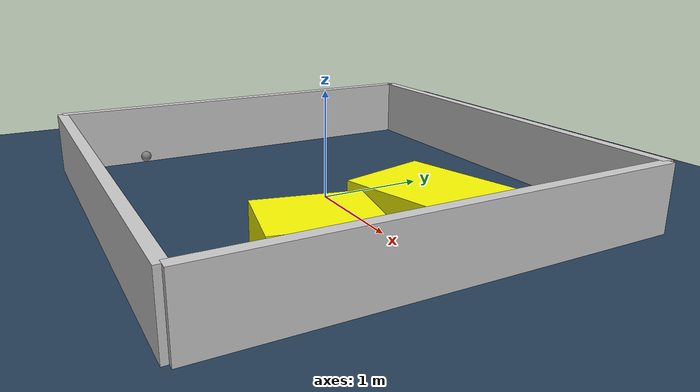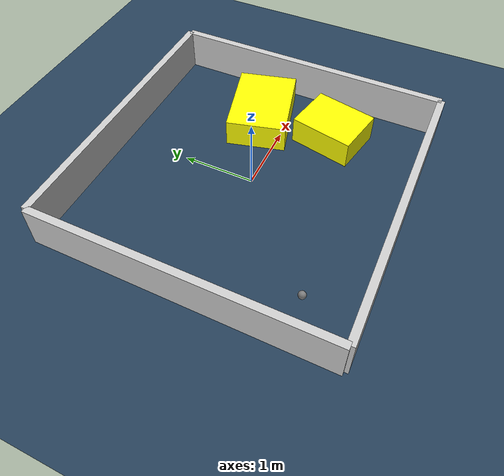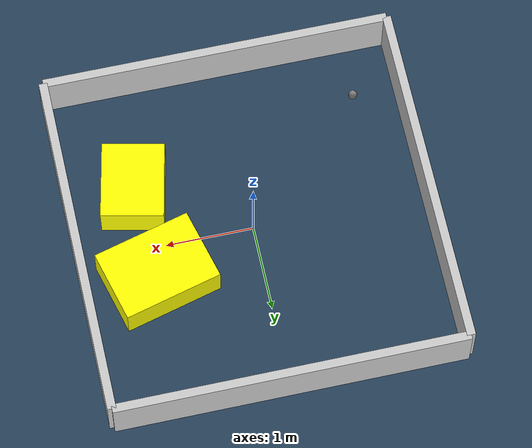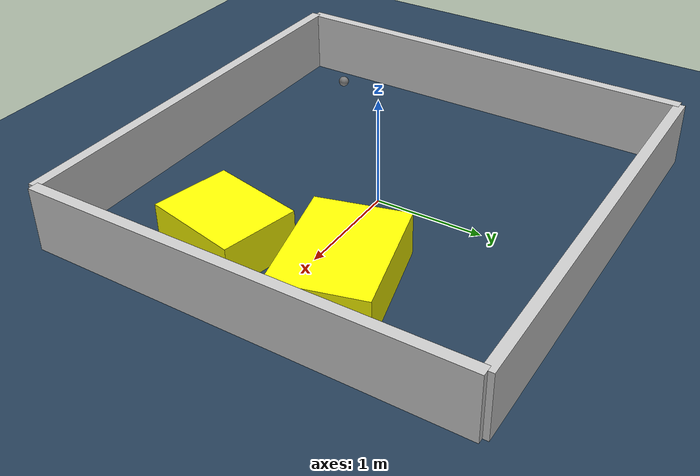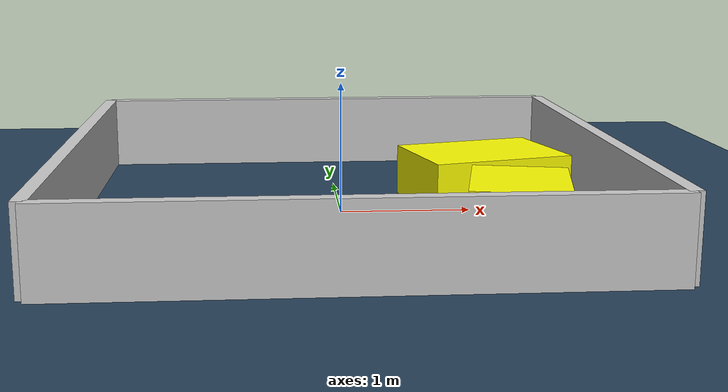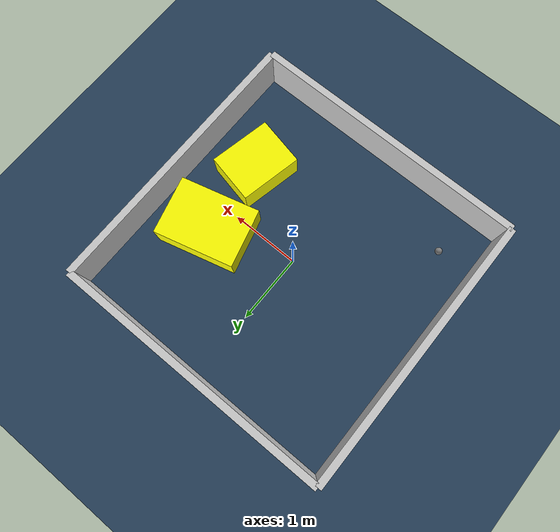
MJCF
<?xml version="1.0" ?>
<mujoco model="generated_environment">
  <option timestep="0.01" integrator="RK4" cone="elliptic"/>
  <default>
    <geom density="1"/>
  </default>
  <asset>
    <texture builtin="gradient" height="3072" rgb1="0.3 0.5 0.7" rgb2="0 0 0" type="skybox" width="512"/>
    <texture builtin="checker" height="300" mark="edge" markrgb="0.8 0.8 0.8" name="groundplane" rgb1="0.2 0.3 0.4" rgb2="0.1 0.2 0.3" type="2d" width="300"/>
    <material name="groundplane" reflectance="0.2" texrepeat="5 5" texture="groundplane" texuniform="true"/>
    <material name="robot" rgba="0.0 1.0 0.0 1"/>
  </asset>
  <worldbody>
    <light dir="0 0 -1" directional="true" pos="0 0 1.5"/>
    <geom condim="4" friction="1.0 0.005 0.001" material="groundplane" name="floor" size="0 0 0.05" type="plane"/>
    <body name="walls">
      <geom name="wall_1" condim="4" pos="-2.0 0.0 0.3" rgba="0.800000011920929 0.800000011920929 0.800000011920929 1.0" size="0.05 2.0 0.3" type="box"/>
      <geom name="wall_2" condim="4" pos="2.0 0.0 0.3" rgba="0.800000011920929 0.800000011920929 0.800000011920929 1.0" size="0.05 2.0 0.3" type="box"/>
      <geom name="wall_3" condim="4" pos="0.0 -2.0 0.3" rgba="0.800000011920929 0.800000011920929 0.800000011920929 1.0" size="2.0 0.05 0.3" type="box"/>
      <geom name="wall_4" condim="4" pos="0.0 2.0 0.3" rgba="0.800000011920929 0.800000011920929 0.800000011920929 1.0" size="2.0 0.05 0.3" type="box"/>
    </body>
    <body name="robot">
      <joint name="joint_x" type="slide" pos="0 0 0" axis="1 0 0"/>
      <joint name="joint_y" type="slide" pos="0 0 0" axis="0 1 0"/>
      <geom name="robot" type="sphere" pos="-1.4527270101647982 -1.3031335744223598 0.2" size="0.05" mass="5." friction="1.0 0.005 0.0001" condim="4"/>
      <site name="sensor_ball"/>
    </body>
    <body name="obstacle_1_movable">
      <geom name="obstacle_1_movable" condim="4" pos="1.232995101671385 -0.7039933310518025 0.2" euler="0 0 347.80809841133816" friction="1.0 0.005 0.001" rgba="1 1 0 1" size="0.3559828802216951 0.44415415725486806 0.2" type="box" mass="0.1"/>
      <joint type="free"/>
    </body>
    <body name="obstacle_2_movable">
      <geom name="obstacle_2_movable" condim="4" pos="1.170386022062825 0.3732383436553346 0.2" euler="0 0 14.620190929767931" friction="1.0 0.005 0.001" rgba="1 1 0 1" size="0.5720451985407187 0.4195185449722464 0.2" type="box" mass="0.1"/>
      <joint type="free"/>
    </body>
  </worldbody>
  <actuator>
    <motor name="actuator_x" joint="joint_x" gear="1" ctrlrange="-1 1"/>
    <motor name="actuator_y" joint="joint_y" gear="1" ctrlrange="-1 1"/>
  </actuator>
</mujoco>
